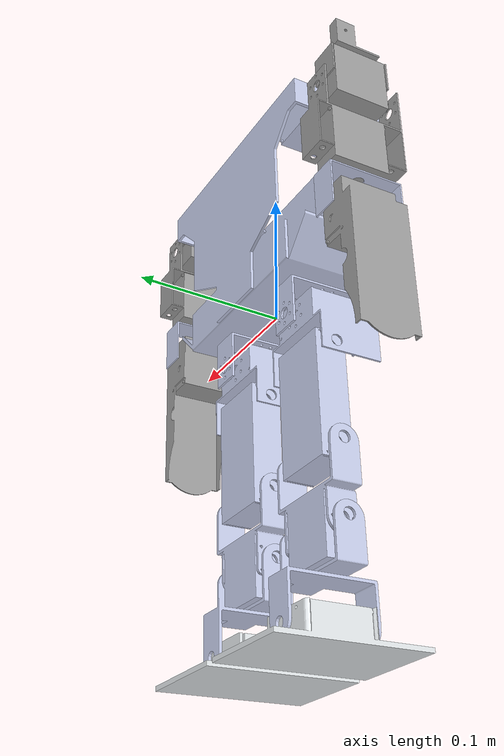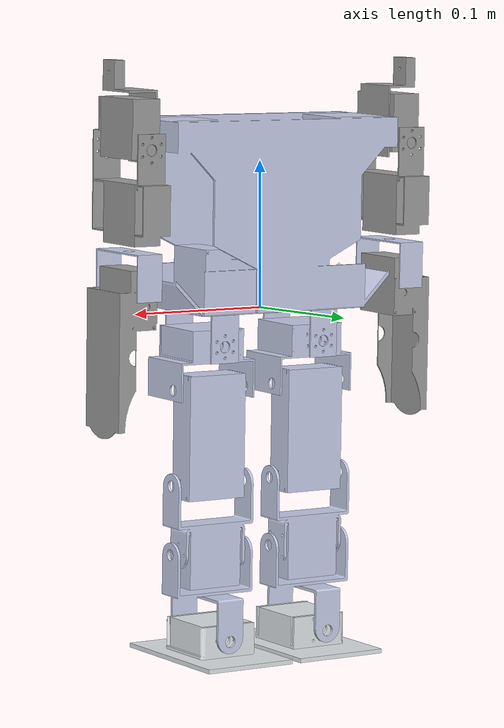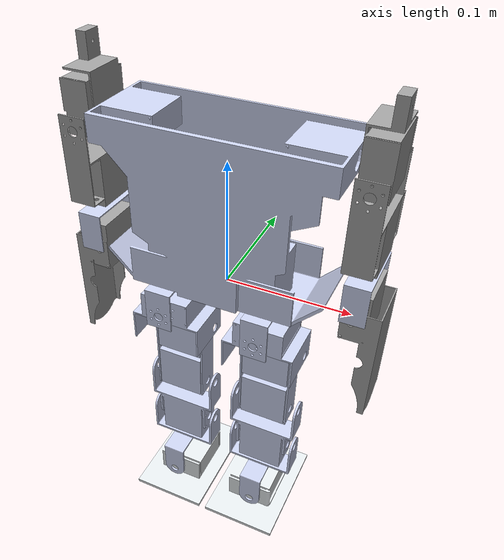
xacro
<?xml version="1.0"?>
<robot xmlns:xacro="http://share/www.ros.org/wiki/xacro">

    <material name="white">
        <color rgba="1 1 1 1" />
    </material>

    <material name="orange">
        <color rgba="1 0.3 0.1 1"/>
    </material>

    <material name="blue">
        <color rgba="0.2 0.2 1 1"/>
    </material>

    <material name="black">
        <color rgba="0 0 0 1"/>
    </material>

    <link
        name="base_link">
        <inertial>
            <origin
                xyz="1.35417581286629E-05 -0.0053284450615302 0.0661303927294094"
                rpy="0 0 0" />
            <mass
                value="0.252429936173088" />
            <inertia
                ixx="0.000381059670185425"
                ixy="1.32881127370107E-08"
                ixz="-1.02510122861259E-08"
                iyy="0.000494482070455948"
                iyz="1.52632058757531E-05"
                izz="0.000368240714417328" />
        </inertial>
        <visual>
            <origin
                xyz="0 0 0"
                rpy="0 0 0" />
            <geometry>
                <mesh filename="file:///home/kingayush/ERC/project_ws/src/humanoid_bot/meshes/base_link.dae" />
            </geometry>
            <material
                name="">
                <color
                    rgba="0.792156862745098 0.819607843137255 0.933333333333333 1" />
            </material>
        </visual>
        <collision>
            <origin
                xyz="0 0 0"
                rpy="0 0 0" />
            <geometry>
                <mesh
                    filename="file:///home/kingayush/ERC/project_ws/src/humanoid_bot/meshes/base_link.dae" />
            </geometry>
        </collision>
    </link>

    <gazebo reference="base_link">
        <material>Gazebo/Blue</material>
    </gazebo>

    <link
        name="Right_leg">
        <inertial>
            <origin
                xyz="-7.2169126750371E-06 -0.000265130356152415 -0.00913282474801548"
                rpy="0 0 0" />
            <mass
                value="0.00367016949694875" />
            <inertia
                ixx="2.52493319472192E-06"
                ixy="1.61306132476352E-11"
                ixz="-2.15561103392276E-10"
                iyy="5.74054276493968E-07"
                iyz="4.87330100073944E-08"
                izz="2.25132396579833E-06" />
        </inertial>
        <visual>
            <origin
                xyz="0 0 0"
                rpy="0 0 0" />
            <geometry>
                <mesh
                    filename="file:///home/kingayush/ERC/project_ws/src/humanoid_bot/meshes/Right_leg.dae" />
            </geometry>
            <material
                name="">
                <color
                    rgba="0.792156862745098 0.819607843137255 0.933333333333333 1" />
            </material>
        </visual>
        <collision>
            <origin
                xyz="0 0 0"
                rpy="0 0 0" />
            <geometry>
                <mesh
                    filename="file:///home/kingayush/ERC/project_ws/src/humanoid_bot/meshes/Right_leg.dae" />
            </geometry>
        </collision>
    </link>
    <joint
        name="rlj"
        type="revolute">
        <origin
            xyz="0.04 -0.010841 0.00028312"
            rpy="0 0 0" />
        <parent
            link="base_link" />
        <child
            link="Right_leg" />
        <axis
            xyz="-0.00078988 -0.029018 -0.99958" />
        <limit
            lower="-1.57"
            upper="1.57"
            effort="1"
            velocity="50" />
    </joint>
    <link
        name="rl1">
        <inertial>
            <origin
                xyz="-0.000226656404843373 -0.0213936228827289 -0.00177484234375003"
                rpy="0 0 0" />
            <mass
                value="0.042039452062415" />
            <inertia
                ixx="7.95098727975664E-06"
                ixy="5.24788645304289E-11"
                ixz="2.93691901386919E-09"
                iyy="9.57809901292651E-06"
                iyz="1.17972046971933E-07"
                izz="1.42559698166353E-05" />
        </inertial>
        <visual>
            <origin
                xyz="0 0 0"
                rpy="0 0 0" />
            <geometry>
                <mesh
                    filename="file:///home/kingayush/ERC/project_ws/src/humanoid_bot/meshes/rl1.dae" />
            </geometry>
            <material
                name="">
                <color
                    rgba="0.792156862745098 0.819607843137255 0.933333333333333 1" />
            </material>
        </visual>
        <collision>
            <origin
                xyz="0 0 0"
                rpy="0 0 0" />
            <geometry>
                <mesh
                    filename="file:///home/kingayush/ERC/project_ws/src/humanoid_bot/meshes/rl1.dae" />
            </geometry>
        </collision>
    </link>

    <gazebo reference="rl1">
        <material>Gazebo/Black</material>
    </gazebo>

    <joint
        name="rlj1"
        type="revolute">
        <origin
            xyz="-1.8333E-05 0.020627 -0.023508"
            rpy="0 0 0" />
        <parent
            link="Right_leg" />
        <child
            link="rl1" />
        <axis
            xyz="1.1463E-05 -0.99958 0.029018" />
        <limit
            lower="-1.57"
            upper="1.57"
            effort="1"
            velocity="50" />
    </joint>
    <link
        name="rl2">
        <inertial>
            <origin
                xyz="-0.0220256650127386 -0.000886121417036451 -0.0324705726683222"
                rpy="0 0 0" />
            <mass
                value="0.073025646039467" />
            <inertia
                ixx="1.63387991228716E-05"
                ixy="-1.5876971728972E-10"
                ixz="-2.04040042921179E-09"
                iyy="2.50089336298376E-05"
                iyz="-3.2682637144261E-07"
                izz="1.37603795334384E-05" />
        </inertial>
        <visual>
            <origin
                xyz="0 0 0"
                rpy="0 0 0" />
            <geometry>
                <mesh
                    filename="file:///home/kingayush/ERC/project_ws/src/humanoid_bot/meshes/rl2.dae" />
            </geometry>
            <material
                name="">
                <color
                    rgba="0.792156862745098 0.819607843137255 0.933333333333333 1" />
            </material>
        </visual>
        <collision>
            <origin
                xyz="0 0 0"
                rpy="0 0 0" />
            <geometry>
                <mesh
                    filename="file:///home/kingayush/ERC/project_ws/src/humanoid_bot/meshes/rl2.dae" />
            </geometry>
        </collision>
    </link>
    <joint
        name="rlj2"
        type="revolute">
        <origin
            xyz="0.021726 -0.011515 -0.029646"
            rpy="0 0 0" />
        <parent
            link="rl1" />
        <child
            link="rl2" />
        <axis
            xyz="-1 1.1463E-05 0.00078988" />
        <limit
            lower="-1.57"
            upper="1.57"
            effort="1"
            velocity="50" />
    </joint>
    <link
        name="rl3">
        <inertial>
            <origin
                xyz="-0.0221392342017609 -0.0011968915413899 -0.0444784621460774"
                rpy="0 0 0" />
            <mass
                value="0.0462151300556569" />
            <inertia
                ixx="7.06861383017405E-06"
                ixy="-2.51614623606525E-09"
                ixz="-8.32097941788731E-08"
                iyy="1.58060370487871E-05"
                iyz="-1.15216239756919E-07"
                izz="1.18532138534048E-05" />
        </inertial>
        <visual>
            <origin
                xyz="0 0 0"
                rpy="0 0 0" />
            <geometry>
                <mesh
                    filename="file:///home/kingayush/ERC/project_ws/src/humanoid_bot/meshes/rl3.dae" />
            </geometry>
            <material
                name="">
                <color
                    rgba="0.792156862745098 0.819607843137255 0.933333333333333 1" />
            </material>
        </visual>
        <collision>
            <origin
                xyz="0 0 0"
                rpy="0 0 0" />
            <geometry>
                <mesh
                    filename="file:///home/kingayush/ERC/project_ws/src/humanoid_bot/meshes/rl3.dae" />
            </geometry>
        </collision>
    </link>

    <gazebo reference="rl3">
        <material>Gazebo/Black</material>
    </gazebo>

    <joint
        name="rlj3"
        type="revolute">
        <origin
            xyz="-5.1342E-05 -0.0018862 -0.064973"
            rpy="0 0 0" />
        <parent
            link="rl2" />
        <child
            link="rl3" />
        <axis
            xyz="-1 1.1463E-05 0.00078988" />
        <limit
            lower="-1.57"
            upper="1.57"
            effort="1"
            velocity="50" />
    </joint>
    <link
        name="rl4">
        <inertial>
            <origin
                xyz="-0.0235530240328952 -0.000736219835662591 -0.0286628003492676"
                rpy="0 0 0" />
            <mass
                value="0.00965451320177639" />
            <inertia
                ixx="4.03196289326731E-06"
                ixy="3.06710353329861E-11"
                ixz="1.06646104221651E-09"
                iyy="4.0334681768456E-06"
                iyz="5.22364332257901E-08"
                izz="5.84391826830039E-06" />
        </inertial>
        <visual>
            <origin
                xyz="0 0 0"
                rpy="0 0 0" />
            <geometry>
                <mesh
                    filename="file:///home/kingayush/ERC/project_ws/src/humanoid_bot/meshes/rl4.dae" />
            </geometry>
            <material
                name="">
                <color
                    rgba="0.792156862745098 0.819607843137255 0.933333333333333 1" />
            </material>
        </visual>
        <collision>
            <origin
                xyz="0 0 0"
                rpy="0 0 0" />
            <geometry>
                <mesh
                    filename="file:///home/kingayush/ERC/project_ws/src/humanoid_bot/meshes/rl4.dae" />
            </geometry>
        </collision>
    </link>
    <joint
        name="rlj4"
        type="revolute">
        <origin
            xyz="0.0014912 -0.0012733 -0.047104"
            rpy="0 0 0" />
        <parent
            link="rl3" />
        <child
            link="rl4" />
        <axis
            xyz="-1 1.1463E-05 0.00078988" />
        <limit
            lower="-1.57"
            upper="1.57"
            effort="1"
            velocity="50" />
    </joint>
    <link
        name="rl5">
        <inertial>
            <origin
                xyz="-0.00322174402997959 -0.0234229415864125 -0.00481794931576368"
                rpy="0 0 0" />
            <mass
                value="0.0713135189542348" />
            <inertia
                ixx="2.9772993790462E-05"
                ixy="1.15365581602416E-09"
                ixz="3.4561775787079E-08"
                iyy="1.66875456915217E-05"
                iyz="7.50974608881809E-07"
                izz="4.25342196180859E-05" />
        </inertial>
        <visual>
            <origin
                xyz="0 0 0"
                rpy="0 0 0" />
            <geometry>
                <mesh
                    filename="file:///home/kingayush/ERC/project_ws/src/humanoid_bot/meshes/rl5.dae" />
            </geometry>
            <material
                name="">
                <color
                    rgba="0.898039215686275 0.917647058823529 0.929411764705882 1" />
            </material>
        </visual>
        <collision>
            <origin
                xyz="0 0 0"
                rpy="0 0 0" />
            <geometry>
                <mesh
                    filename="file:///home/kingayush/ERC/project_ws/src/humanoid_bot/meshes/rl5.dae" />
            </geometry>
        </collision>
    </link>

    <gazebo reference="rl5">
        <material>Gazebo/Black</material>
    </gazebo>

    <joint
        name="rlj5"
        type="revolute">
        <origin
            xyz="-0.02348 0.021948 -0.058024"
            rpy="0 0 0" />
        <parent
            link="rl4" />
        <child
            link="rl5" />
        <axis
            xyz="-1.1463E-05 0.99958 -0.029018" />
        <limit
            lower="-1.57"
            upper="1.57"
            effort="1"
            velocity="50" />
    </joint>
    <link
        name="Left_leg">
        <inertial>
            <origin
                xyz="-7.2169126750371E-06 -0.000265130356152249 -0.00913282474801554"
                rpy="0 0 0" />
            <mass
                value="0.00367016949694876" />
            <inertia
                ixx="2.52493319493629E-06"
                ixy="-1.53102035623497E-11"
                ixz="-2.14648361317405E-10"
                iyy="5.74054277721122E-07"
                iyz="4.87330348168381E-08"
                izz="2.25132396435685E-06" />
        </inertial>
        <visual>
            <origin
                xyz="0 0 0"
                rpy="0 0 0" />
            <geometry>
                <mesh
                    filename="file:///home/kingayush/ERC/project_ws/src/humanoid_bot/meshes/Left_leg.dae" />
            </geometry>
            <material
                name="">
                <color
                    rgba="0.792156862745098 0.819607843137255 0.933333333333333 1" />
            </material>
        </visual>
        <collision>
            <origin
                xyz="0 0 0"
                rpy="0 0 0" />
            <geometry>
                <mesh
                    filename="file:///home/kingayush/ERC/project_ws/src/humanoid_bot/meshes/Left_leg.dae" />
            </geometry>
        </collision>
    </link>
    <joint
        name="llj"
        type="revolute">
        <origin
            xyz="-0.04 -0.01084 0.00034631"
            rpy="0 0 0" />
        <parent
            link="base_link" />
        <child
            link="Left_leg" />
        <axis
            xyz="-0.00078988 -0.029018 -0.99958" />
        <limit
            lower="-1.57"
            upper="1.57"
            effort="1"
            velocity="50" />
    </joint>
    <link
        name="ll1">
        <inertial>
            <origin
                xyz="0.000223018111645212 -0.0213936316582284 -0.00177519742940602"
                rpy="0 0 0" />
            <mass
                value="0.0420394520624151" />
            <inertia
                ixx="7.95099374195368E-06"
                ixy="1.97341259132461E-10"
                ixz="7.02514529904011E-09"
                iyy="9.57809900727248E-06"
                iyz="1.17971852798533E-07"
                izz="1.42559633600924E-05" />
        </inertial>
        <visual>
            <origin
                xyz="0 0 0"
                rpy="0 0 0" />
            <geometry>
                <mesh
                    filename="file:///home/kingayush/ERC/project_ws/src/humanoid_bot/meshes/ll1.dae" />
            </geometry>
            <material
                name="">
                <color
                    rgba="0.792156862745098 0.819607843137255 0.933333333333333 1" />
            </material>
        </visual>
        <collision>
            <origin
                xyz="0 0 0"
                rpy="0 0 0" />
            <geometry>
                <mesh
                    filename="file:///home/kingayush/ERC/project_ws/src/humanoid_bot/meshes/ll1.dae" />
            </geometry>
        </collision>
    </link>

    <gazebo reference="ll1">
        <material>Gazebo/Black</material>
    </gazebo>

    <joint
        name="llj1"
        type="revolute">
        <origin
            xyz="-1.7989E-05 0.020627 -0.023508"
            rpy="0 0 0" />
        <parent
            link="Left_leg" />
        <child
            link="ll1" />
        <axis
            xyz="0 0.99958 -0.029018" />
        <limit
            lower="-1.57"
            upper="1.57"
            effort="1"
            velocity="50" />
    </joint>
    <link
        name="ll2">
        <inertial>
            <origin
                xyz="-0.0220256640997322 -0.000885767116807809 -0.0324705829545521"
                rpy="0 0 0" />
            <mass
                value="0.0730256460394671" />
            <inertia
                ixx="1.63387991219187E-05"
                ixy="-1.89883155979073E-11"
                ixz="-2.04445835071359E-09"
                iyy="2.50089336243819E-05"
                iyz="-3.26826481741855E-07"
                izz="1.37603795398471E-05" />
        </inertial>
        <visual>
            <origin
                xyz="0 0 0"
                rpy="0 0 0" />
            <geometry>
                <mesh
                    filename="file:///home/kingayush/ERC/project_ws/src/humanoid_bot/meshes/ll2.dae" />
            </geometry>
            <material
                name="">
                <color
                    rgba="0.792156862745098 0.819607843137255 0.933333333333333 1" />
            </material>
        </visual>
        <collision>
            <origin
                xyz="0 0 0"
                rpy="0 0 0" />
            <geometry>
                <mesh
                    filename="file:///home/kingayush/ERC/project_ws/src/humanoid_bot/meshes/ll2.dae" />
            </geometry>
        </collision>
    </link>
    <joint
        name="llj2"
        type="revolute">
        <origin
            xyz="0.022226 -0.011515 -0.029646"
            rpy="0 0 0" />
        <parent
            link="ll1" />
        <child
            link="ll2" />
        <axis
            xyz="-1 2.7567E-05 0.00078942" />
        <limit
            lower="-1.57"
            upper="1.57"
            effort="1"
            velocity="50" />
    </joint>
    <link
        name="ll3">
        <inertial>
            <origin
                xyz="-0.0219310712392317 -0.00119654130349063 -0.0444786368075501"
                rpy="0 0 0" />
            <mass
                value="0.0462151300556569" />
            <inertia
                ixx="7.06888878547652E-06"
                ixy="2.67519953555351E-09"
                ixz="9.07611902444908E-08"
                iyy="1.58060368461665E-05"
                iyz="-1.15223734192333E-07"
                izz="1.1852939100723E-05" />
        </inertial>
        <visual>
            <origin
                xyz="0 0 0"
                rpy="0 0 0" />
            <geometry>
                <mesh
                    filename="file:///home/kingayush/ERC/project_ws/src/humanoid_bot/meshes/ll3.dae" />
            </geometry>
            <material
                name="">
                <color
                    rgba="0.792156862745098 0.819607843137255 0.933333333333333 1" />
            </material>
        </visual>
        <collision>
            <origin
                xyz="0 0 0"
                rpy="0 0 0" />
            <geometry>
                <mesh
                    filename="file:///home/kingayush/ERC/project_ws/src/humanoid_bot/meshes/ll3.dae" />
            </geometry>
        </collision>
    </link>

    <gazebo reference="ll3">
        <material>Gazebo/Black</material>
    </gazebo>

    <joint
        name="llj3"
        type="revolute">
        <origin
            xyz="-5.1342E-05 -0.0018862 -0.064973"
            rpy="0 0 0" />
        <parent
            link="ll2" />
        <child
            link="ll3" />
        <axis
            xyz="-1 2.7567E-05 0.00078942" />
        <limit
            lower="-1.57"
            upper="1.57"
            effort="1"
            velocity="50" />
    </joint>
    <link
        name="ll4">
        <inertial>
            <origin
                xyz="-0.0235506939130412 -0.000735840953741712 -0.0286628131896948"
                rpy="0 0 0" />
            <mass
                value="0.00965451320177639" />
            <inertia
                ixx="4.03196404815302E-06"
                ixy="5.18847531035041E-11"
                ixz="1.79720025848887E-09"
                iyy="4.03346817601762E-06"
                iyz="5.22364022138134E-08"
                izz="5.84391711424267E-06" />
        </inertial>
        <visual>
            <origin
                xyz="0 0 0"
                rpy="0 0 0" />
            <geometry>
                <mesh
                    filename="file:///home/kingayush/ERC/project_ws/src/humanoid_bot/meshes/ll4.dae" />
            </geometry>
            <material
                name="">
                <color
                    rgba="0.792156862745098 0.819607843137255 0.933333333333333 1" />
            </material>
        </visual>
        <collision>
            <origin
                xyz="0 0 0"
                rpy="0 0 0" />
            <geometry>
                <mesh
                    filename="file:///home/kingayush/ERC/project_ws/src/humanoid_bot/meshes/ll4.dae" />
            </geometry>
        </collision>
    </link>
    <joint
        name="llj4"
        type="revolute">
        <origin
            xyz="0.0014928 -0.0012733 -0.047104"
            rpy="0 0 0" />
        <parent
            link="ll3" />
        <child
            link="ll4" />
        <axis
            xyz="-1 2.7567E-05 0.00078942" />
        <limit
            lower="-1.57"
            upper="1.57"
            effort="1"
            velocity="50" />
    </joint>
    <link
        name="ll5">
        <inertial>
            <origin
                xyz="0.00321321681597026 -0.0234230671661239 -0.00482303068508583"
                rpy="0 0 0" />
            <mass
                value="0.0713135189542347" />
            <inertia
                ixx="2.97729164352739E-05"
                ixy="-4.78368379854985E-10"
                ixz="-1.43785163273644E-08"
                iyy="1.66875457552203E-05"
                iyz="7.50976852692365E-07"
                izz="4.25342969095753E-05" />
        </inertial>
        <visual>
            <origin
                xyz="0 0 0"
                rpy="0 0 0" />
            <geometry>
                <mesh
                    filename="file:///home/kingayush/ERC/project_ws/src/humanoid_bot/meshes/ll5.dae" />
            </geometry>
            <material
                name="">
                <color
                    rgba="0.898039215686275 0.917647058823529 0.929411764705882 1" />
            </material>
        </visual>
        <collision>
            <origin
                xyz="0 0 0"
                rpy="0 0 0" />
            <geometry>
                <mesh
                    filename="file:///home/kingayush/ERC/project_ws/src/humanoid_bot/meshes/ll5.dae" />
            </geometry>
        </collision>
    </link>

    <gazebo reference="ll5">
        <material>Gazebo/Black</material>
    </gazebo>

    <joint
        name="llj5"
        type="revolute">
        <origin
            xyz="-0.023669 0.021948 -0.058024"
            rpy="0 0 0" />
        <parent
            link="ll4" />
        <child
            link="ll5" />
        <axis
            xyz="0 -0.99958 0.029018" />
        <limit
            lower="-1.57"
            upper="1.57"
            effort="1"
            velocity="50" />
    </joint>
    <link
        name="Right_hand">
        <inertial>
            <origin
                xyz="0.0161865806777658 -0.000302672847394256 0.00797099783190179"
                rpy="0 0 0" />
            <mass
                value="0.0386774780582648" />
            <inertia
                ixx="1.1551151662056E-05"
                ixy="1.51772954974114E-07"
                ixz="-6.77573644538345E-07"
                iyy="7.84316879217346E-06"
                iyz="3.35646878519174E-07"
                izz="6.72160342397866E-06" />
        </inertial>
        <visual>
            <origin
                xyz="0 0 0"
                rpy="0 0 0" />
            <geometry>
                <mesh
                    filename="file:///home/kingayush/ERC/project_ws/src/humanoid_bot/meshes/Right_hand.dae" />
            </geometry>
            <material
                name="">
                <color
                    rgba="0.627450980392157 0.627450980392157 0.627450980392157 1" />
            </material>
        </visual>
        <collision>
            <origin
                xyz="0 0 0"
                rpy="0 0 0" />
            <geometry>
                <mesh
                    filename="file:///home/kingayush/ERC/project_ws/src/humanoid_bot/meshes/Right_hand.dae" />
            </geometry>
        </collision>
    </link>
    <joint
        name="rhj"
        type="revolute">
        <origin
            xyz="0.088394 0.0016234 0.11948"
            rpy="0 0.00078988 -1.1463E-05" />
        <parent
            link="base_link" />
        <child
            link="Right_hand" />
        <axis
            xyz="-1 0 0" />
        <limit
            lower="-1.57"
            upper="1.57"
            effort="1"
            velocity="50" />
    </joint>
    <link
        name="rh1">
        <inertial>
            <origin
                xyz="0.000406089738424209 -0.0250729637753997 -0.0403805981999545"
                rpy="0 0 0" />
            <mass
                value="0.0365288620683132" />
            <inertia
                ixx="1.2966722241973E-05"
                ixy="1.29923731978616E-11"
                ixz="-3.44579528181675E-09"
                iyy="6.83391766384061E-06"
                iyz="9.84860277468819E-08"
                izz="8.60880168114883E-06" />
        </inertial>
        <visual>
            <origin
                xyz="0 0 0"
                rpy="0 0 0" />
            <geometry>
                <mesh
                    filename="file:///home/kingayush/ERC/project_ws/src/humanoid_bot/meshes/rh1.dae" />
            </geometry>
            <material
                name="">
                <color
                    rgba="0.627450980392157 0.627450980392157 0.627450980392157 1" />
            </material>
        </visual>
        <collision>
            <origin
                xyz="0 0 0"
                rpy="0 0 0" />
            <geometry>
                <mesh
                    filename="file:///home/kingayush/ERC/project_ws/src/humanoid_bot/meshes/rh1.dae" />
            </geometry>
        </collision>
    </link>

    <gazebo reference="rh1">
        <material>Gazebo/Black</material>
    </gazebo>

    <joint
        name="rhj1"
        type="revolute">
        <origin
            xyz="0.016483 0.02875 -0.009044"
            rpy="0 -0.00078988 1.1463E-05" />
        <parent
            link="Right_hand" />
        <child
            link="rh1" />
        <axis
            xyz="-1.1463E-05 0.99958 -0.029018" />
        <limit
            lower="-1.57"
            upper="1.57"
            effort="1"
            velocity="50" />
    </joint>
    <link
        name="rh2">
        <inertial>
            <origin
                xyz="-7.20994548822351E-06 -0.000264874400065923 -0.00912400794516433"
                rpy="0 0 0" />
            <mass
                value="0.00211573451754258" />
            <inertia
                ixx="1.23903713581457E-06"
                ixy="7.38044657053826E-12"
                ixz="-1.22679121095011E-10"
                iyy="2.85568177401466E-07"
                iyz="2.31806266055482E-08"
                izz="1.08338802818883E-06" />
        </inertial>
        <visual>
            <origin
                xyz="0 0 0"
                rpy="0 0 0" />
            <geometry>
                <mesh
                    filename="file:///home/kingayush/ERC/project_ws/src/humanoid_bot/meshes/rh2.dae" />
            </geometry>
            <material
                name="">
                <color
                    rgba="0.792156862745098 0.819607843137255 0.933333333333333 1" />
            </material>
        </visual>
        <collision>
            <origin
                xyz="0 0 0"
                rpy="0 0 0" />
            <geometry>
                <mesh
                    filename="file:///home/kingayush/ERC/project_ws/src/humanoid_bot/meshes/rh2.dae" />
            </geometry>
        </collision>
    </link>
    <joint
        name="rhj2"
        type="revolute">
        <origin
            xyz="0.00094618 -0.027611 -0.067735"
            rpy="0 0 0" />
        <parent
            link="rh1" />
        <child
            link="rh2" />
        <axis
            xyz="0.00078988 0.029018 0.99958" />
        <limit
            lower="-1.57"
            upper="1.57"
            effort="1"
            velocity="50" />
    </joint>
    <link
        name="rh3">
        <inertial>
            <origin
                xyz="0.00250794378796093 -0.0260547875116064 -0.018638499991729"
                rpy="0 0 0" />
            <mass
                value="0.0385191203079589" />
            <inertia
                ixx="1.5215770408254E-05"
                ixy="1.37992435307474E-08"
                ixz="4.60685190443868E-07"
                iyy="1.06715884908314E-05"
                iyz="-9.92877783132776E-08"
                izz="7.23814175894702E-06" />
        </inertial>
        <visual>
            <origin
                xyz="0 0 0"
                rpy="0 0 0" />
            <geometry>
                <mesh
                    filename="file:///home/kingayush/ERC/project_ws/src/humanoid_bot/meshes/rh3.dae" />
            </geometry>
            <material
                name="">
                <color
                    rgba="0.627450980392157 0.627450980392157 0.627450980392157 1" />
            </material>
        </visual>
        <collision>
            <origin
                xyz="0 0 0"
                rpy="0 0 0" />
            <geometry>
                <mesh
                    filename="file:///home/kingayush/ERC/project_ws/src/humanoid_bot/meshes/rh3.dae" />
            </geometry>
        </collision>
    </link>

    <gazebo reference="rh3">
        <material>Gazebo/Black</material>
    </gazebo>

    <joint
        name="rhj3"
        type="revolute">
        <origin
            xyz="0.00046641 0.024973 -0.018527"
            rpy="0 0 0" />
        <parent
            link="rh2" />
        <child
            link="rh3" />
        <axis
            xyz="1.1463E-05 -0.99958 0.029018" />
        <limit
            lower="-1.57"
            upper="1.57"
            effort="1"
            velocity="50" />
    </joint>
    <link
        name="Left_hand">
        <inertial>
            <origin
                xyz="-0.0161865806777658 0.000764577166430885 0.00794001505323991"
                rpy="0 0 0" />
            <mass
                value="0.0386774780582654" />
            <inertia
                ixx="1.15511516620597E-05"
                ixy="1.90824798687739E-07"
                ixz="6.67627867780743E-07"
                iyy="7.8005167230562E-06"
                iyz="-3.98342455260364E-07"
                izz="6.7642554930997E-06" />
        </inertial>
        <visual>
            <origin
                xyz="0 0 0"
                rpy="0 0 0" />
            <geometry>
                <mesh
                    filename="file:///home/kingayush/ERC/project_ws/src/humanoid_bot/meshes/Left_hand.dae" />
            </geometry>
            <material
                name="">
                <color
                    rgba="0.627450980392157 0.627450980392157 0.627450980392157 1" />
            </material>
        </visual>
        <collision>
            <origin
                xyz="0 0 0"
                rpy="0 0 0" />
            <geometry>
                <mesh
                    filename="file:///home/kingayush/ERC/project_ws/src/humanoid_bot/meshes/Left_hand.dae" />
            </geometry>
        </collision>
    </link>
    <joint
        name="lhj"
        type="revolute">
        <origin
            xyz="-0.088206 0.0016255 0.11962"
            rpy="0 0.00078988 -1.1463E-05" />
        <parent
            link="base_link" />
        <child
            link="Left_hand" />
        <axis
            xyz="-1 0 0" />
        <limit
            lower="-1.57"
            upper="1.57"
            effort="1"
            velocity="50" />
    </joint>
    <link
        name="lh1">
        <inertial>
            <origin
                xyz="-0.000470445904127724 -0.0250729537277202 -0.0403799058383448"
                rpy="0 0 0" />
            <mass
                value="0.0365288620683132" />
            <inertia
                ixx="1.29667222419731E-05"
                ixy="1.29923732019853E-11"
                ixz="-3.4457952818145E-09"
                iyy="6.83391766384062E-06"
                iyz="9.84860277468744E-08"
                izz="8.60880168114886E-06" />
        </inertial>
        <visual>
            <origin
                xyz="0 0 0"
                rpy="0 0 0" />
            <geometry>
                <mesh
                    filename="file:///home/kingayush/ERC/project_ws/src/humanoid_bot/meshes/lh1.dae" />
            </geometry>
            <material
                name="">
                <color
                    rgba="0.627450980392157 0.627450980392157 0.627450980392157 1" />
            </material>
        </visual>
        <collision>
            <origin
                xyz="0 0 0"
                rpy="0 0 0" />
            <geometry>
                <mesh
                    filename="file:///home/kingayush/ERC/project_ws/src/humanoid_bot/meshes/lh1.dae" />
            </geometry>
        </collision>
    </link>

    <gazebo reference="lh1">
        <material>Gazebo/Black</material>
    </gazebo>

    <joint
        name="lhj1"
        type="revolute">
        <origin
            xyz="-0.016483 0.02875 -0.009044"
            rpy="0 -0.00078988 1.1463E-05" />
        <parent
            link="Left_hand" />
        <child
            link="lh1" />
        <axis
            xyz="-1.1463E-05 0.99958 -0.029018" />
        <limit
            lower="-1.57"
            upper="1.57"
            effort="1"
            velocity="50" />
    </joint>
    <link
        name="lh2">
        <inertial>
            <origin
                xyz="-7.20994548821657E-06 -0.000264874400066034 -0.00912400794516435"
                rpy="0 0 0" />
            <mass
                value="0.00211573451754256" />
            <inertia
                ixx="1.23903713581457E-06"
                ixy="7.38044657143282E-12"
                ixz="-1.22679121094669E-10"
                iyy="2.85568177401464E-07"
                iyz="2.31806266055475E-08"
                izz="1.08338802818883E-06" />
        </inertial>
        <visual>
            <origin
                xyz="0 0 0"
                rpy="0 0 0" />
            <geometry>
                <mesh
                    filename="file:///home/kingayush/ERC/project_ws/src/humanoid_bot/meshes/lh2.dae" />
            </geometry>
            <material
                name="">
                <color
                    rgba="0.792156862745098 0.819607843137255 0.933333333333333 1" />
            </material>
        </visual>
        <collision>
            <origin
                xyz="0 0 0"
                rpy="0 0 0" />
            <geometry>
                <mesh
                    filename="file:///home/kingayush/ERC/project_ws/src/humanoid_bot/meshes/lh2.dae" />
            </geometry>
        </collision>
    </link>
    <joint
        name="lhj2"
        type="revolute">
        <origin
            xyz="-0.0010538 -0.027611 -0.067733"
            rpy="0 0 0" />
        <parent
            link="lh1" />
        <child
            link="lh2" />
        <axis
            xyz="0.00078988 0.029018 0.99958" />
        <limit
            lower="-1.57"
            upper="1.57"
            effort="1"
            velocity="50" />
    </joint>
    <link
        name="lh3">
        <inertial>
            <origin
                xyz="-0.00349948892631882 -0.0260572497849816 -0.0186336813357347"
                rpy="0 0 0" />
            <mass
                value="0.0385191203079589" />
            <inertia
                ixx="1.52142942904022E-05"
                ixy="-1.33158227321521E-08"
                ixz="-4.73309547511487E-07"
                iyy="1.0671535147843E-05"
                iyz="-1.00184318642492E-07"
                izz="7.23967121978727E-06" />
        </inertial>
        <visual>
            <origin
                xyz="0 0 0"
                rpy="0 0 0" />
            <geometry>
                <mesh
                    filename="file:///home/kingayush/ERC/project_ws/src/humanoid_bot/meshes/lh3.dae" />
            </geometry>
            <material
                name="">
                <color
                    rgba="0.627450980392157 0.627450980392157 0.627450980392157 1" />
            </material>
        </visual>
        <collision>
            <origin
                xyz="0 0 0"
                rpy="0 0 0" />
            <geometry>
                <mesh
                    filename="file:///home/kingayush/ERC/project_ws/src/humanoid_bot/meshes/lh3.dae" />
            </geometry>
        </collision>
    </link>

    <gazebo reference="lh3">
        <material>Gazebo/Black</material>
    </gazebo>

    <joint
        name="lhj3"
        type="revolute">
        <origin
            xyz="0.00046641 0.024973 -0.018527"
            rpy="0 0 0" />
        <parent
            link="lh2" />
        <child
            link="lh3" />
        <axis
            xyz="1.1463E-05 -0.99958 0.029018" />
        <limit
            lower="-1.57"
            upper="1.57"
            effort="1"
            velocity="50" />
    </joint>
</robot>
